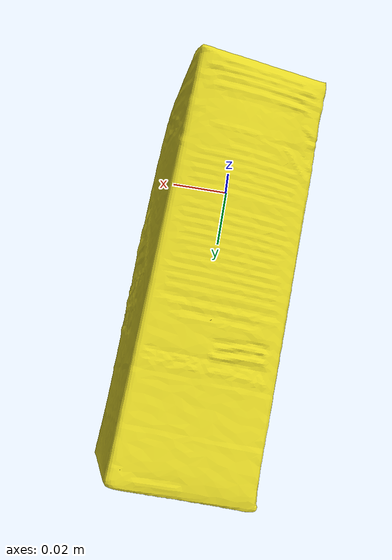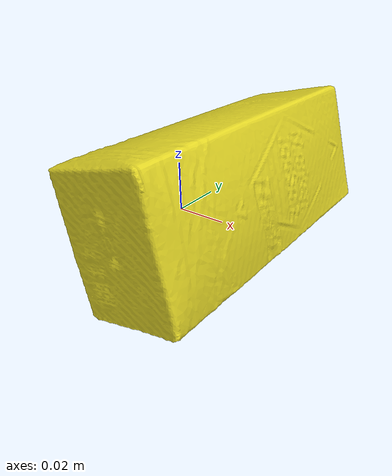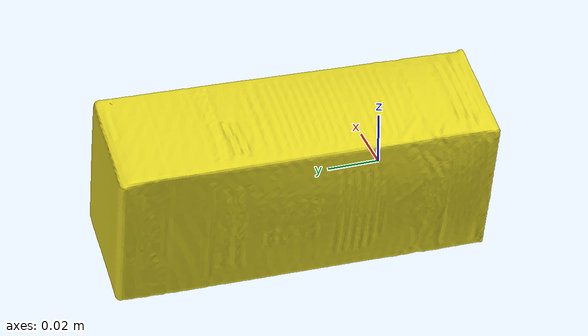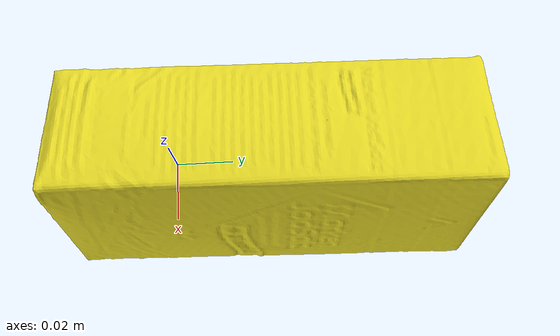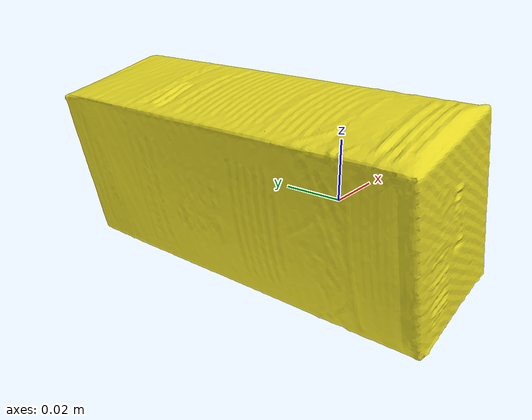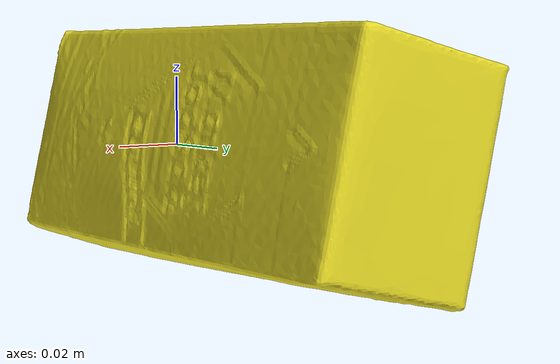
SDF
<?xml version='1.0'?>
<sdf version="1.4">
  <model name="YellowSaltCube">
    <static>false</static>
    <link name="link">
      <inertial>
        <pose>0.002096149910387297 0.0330838819476702 -0.0003986809186583674 1.577009090225859 -0.24393898994426216 -0.026319173319824245</pose>
        <mass>0.04564207947208839</mass>
        <inertia>
          <ixx>9.390716516167117e-05</ixx>
          <ixy>1.3104440752572681e-21</ixy>
          <ixz>1.6406514365245073e-21</ixz>
          <iyy>8.791714723847858e-05</iyy>
          <iyz>7.875805547298469e-21</iyz>
          <izz>2.423849457187626e-05</izz>
        </inertia>
      </inertial>
      <collision name="collision">
        <geometry>
          <mesh>
            <!-- Use a downsampled mesh for collisions -->
            <uri>model:///YellowSaltCube/YellowSaltCube_250_collision.obj</uri>
	        </mesh>
        </geometry>
        <surface>
      </surface>
      </collision>
      <visual name="visual">
        <geometry>
          <mesh>
            <uri>model:///YellowSaltCube/YellowSaltCube_25k_tex.obj</uri>
	        </mesh>
        </geometry>
        <material>
          <script>
            <uri>model:///YellowSaltCube/YellowSaltCube.material</uri>
            <name>YellowSaltCube</name>
          </script>
        </material>
      </visual>
    </link>
  </model>
</sdf>
